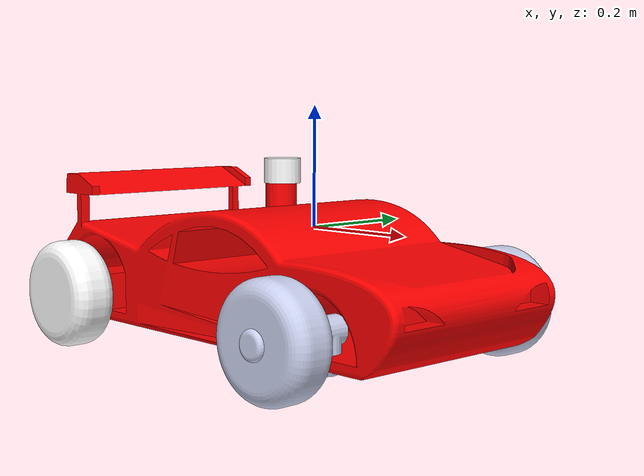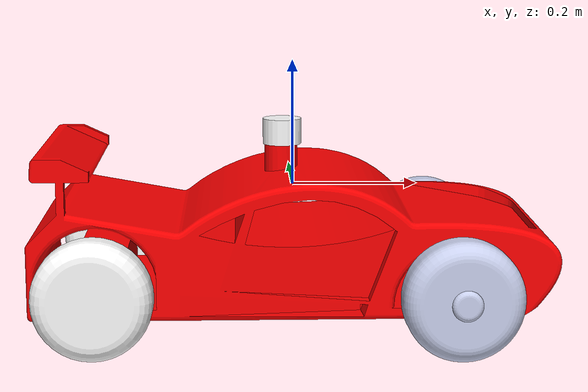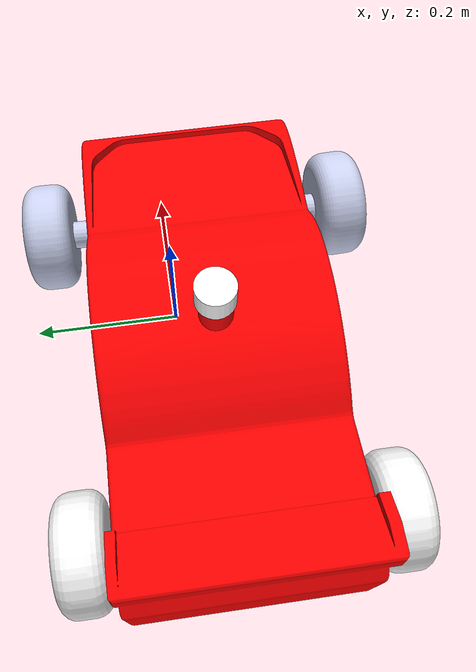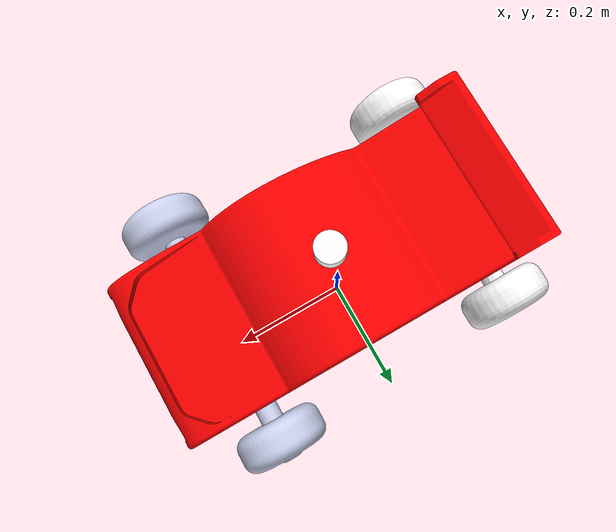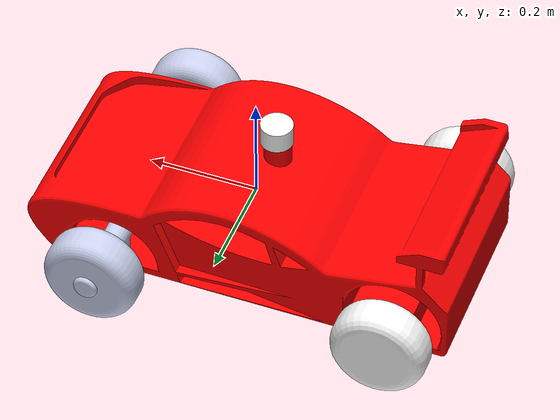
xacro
<?xml version="1.0"?>
<robot
  name="racecar_1" xmlns:xacro="http://ros.org/wiki/xacro">

  <xacro:macro name="body_color">
      <visual>
      <material>
          <ambient>1 0 0 1</ambient>
          <diffuse>1 0 0 1</diffuse>
          <specular>0.1 0.1 0.1 1</specular>
          <emissive>0 0 0 0</emissive>
      </material>
      </visual>
  </xacro:macro>

    <xacro:macro name="rear_tyre_color">
      <visual>
      <material>
          <ambient>1 1 1 1</ambient>
          <diffuse>1 1 1 1</diffuse>
          <specular>0.1 0.1 0.1 1</specular>
          <emissive>0 0 0 0</emissive>
      </material>
      </visual>
  </xacro:macro>

    <xacro:macro name="l_link_right_color">
      <visual>
      <material>
          <ambient>0.792156862745098 0.819607843137255 0.933333333333333 1</ambient>
          <diffuse>0.792156862745098 0.819607843137255 0.933333333333333 1</diffuse>
          <specular>0.1 0.1 0.1 1</specular>
          <emissive>0 0 0 0</emissive>
      </material>
      </visual>
  </xacro:macro>

    <xacro:macro name="l_link_left_color">
      <visual>
      <material>
          <ambient>0.792156862745098 0.819607843137255 0.933333333333333 1</ambient>
          <diffuse>0.792156862745098 0.819607843137255 0.933333333333333 1</diffuse>
          <specular>0.1 0.1 0.1 1</specular>
          <emissive>0 0 0 0</emissive>
      </material>
      </visual>
  </xacro:macro>

    <xacro:macro name="tyre_right_f_color">
      <visual>
      <material>
          <ambient>0.792156862745098 0.819607843137255 0.933333333333333 1</ambient>
          <diffuse>0.792156862745098 0.819607843137255 0.933333333333333 1</diffuse>
          <specular>0.1 0.1 0.1 1</specular>
          <emissive>0 0 0 0</emissive>
      </material>
      </visual>
  </xacro:macro>

    <xacro:macro name="tyre_left_f_color">
      <visual>
      <material>
          <ambient>0.792156862745098 0.819607843137255 0.933333333333333 1</ambient>
          <diffuse>0.792156862745098 0.819607843137255 0.933333333333333 1</diffuse>
          <specular>0.1 0.1 0.1 1</specular>
          <emissive>0 0 0 0</emissive>
      </material>
      </visual>
  </xacro:macro>

    # before base link
  <link name="dummy_link"></link>

  <link
    name="base_link">
    <inertial>
      <origin
        xyz="-0.0109928146425733 -0.0533021658276837 -0.0718641926502767"
        rpy="0 0 0" />
      <mass
        value="20.6916512486912" />
      <inertia
        ixx="0.321750706503774"
        ixy="0.00106012553052971"
        ixz="0.0300017756684681"
        iyy="1.2584962847604"
        iyz="0.00193875141931229"
        izz="1.42862347215519" />
    </inertial>
    <visual>
      <origin
        xyz="0 0 0"
        rpy="0 0 0" />
      <geometry>
        <mesh
          filename="package://racecar_1/meshes/base_link.STL" />
      </geometry>
      <material
        name="">
        <color
          rgba="1 0 0 1" />
      </material>
    </visual>
    <collision>
      <origin
        xyz="0 0 0"
        rpy="0 0 0" />
      <geometry>
        <mesh
          filename="package://racecar_1/meshes/base_link.STL" />
      </geometry>
    </collision>
  </link>

   # after base link
  <joint name="dummy_joint" type="fixed">
      <origin rpy="0 0 0" xyz="0 0 0" />
      <parent link="dummy_link"/>
      <child link="base_link"/>
  </joint>

  <link name="laser_frame">
    <visual>
      <geometry>
          <cylinder radius="0.03" length="0.04"/>
      </geometry>
      <material name="white">
        <color rgba="1 1 1 1"/>
      </material>
    </visual>
    <collision>
      <geometry>
        <cylinder radius="0.03" length="0.04"/>
      </geometry>
    </collision>
  </link>

  <joint name="laser_joint" type="fixed">
        <parent link="base_link"/>
        <child link="laser_frame"/>
        <origin xyz= "-0.018 -0.055 0.095" rpy="0 0 0"/>
  </joint>

  <gazebo reference="laser_frame">
  <gravity>true</gravity>
  <sensor name="imu_sensor" type="imu">
    <always_on>true</always_on>
    <update_rate>100</update_rate>
    <visualize>true</visualize>
    <topic>__default_topic__</topic>
    <plugin filename="libgazebo_ros_imu_sensor.so" name="imu_plugin">
      <topicName>imu</topicName>
      <bodyName>base_link</bodyName>
      <updateRateHZ>10.0</updateRateHZ>
      <gaussianNoise>0.0</gaussianNoise>
      <xyzOffset>0 0 0</xyzOffset>
      <rpyOffset>0 0 0</rpyOffset>
      <frameName>base_link</frameName>
      <initialOrientationAsReference>false</initialOrientationAsReference>
    </plugin>
    <pose>0 0 0 0 0 0</pose>
  </sensor>
  </gazebo>

  <gazebo reference="laser_frame">
  <sensor name="lidar" type="ray">
    <pose>0.0 0.0 0.0 0 0 0</pose>
    <always_on>true</always_on>
    <visualize>true</visualize>
    <update_rate>5</update_rate>
    <ray>
      <scan>
        <horizontal>
          <samples>360</samples>
          <resolution>1.00000</resolution>
          <min_angle>0.000000</min_angle>
          <max_angle>6.280000</max_angle>
        </horizontal>
      </scan>
      <range>
        <min>0.120000</min>
        <max>4</max>
        <resolution>0.015000</resolution>
      </range>
      <noise>
        <type>gaussian</type>
        <mean>0.0</mean>
        <stddev>0.01</stddev>
      </noise>
    </ray>
    <plugin name="scan" filename="libgazebo_ros_ray_sensor.so">
      <ros>
        <remapping>~/out:=scan</remapping>
      </ros>
      <output_type>sensor_msgs/LaserScan</output_type>
      <frame_name>laser_frame</frame_name>
    </plugin>
  </sensor>
  </gazebo>

  <link
    name="back_wheel_link">
    <inertial>
      <origin
        xyz="0 0 0.2667"
        rpy="0 0 0" />
      <mass
        value="3.96932815202646" />
      <inertia
        ixx="0.19975718936313"
        ixy="4.21553625732351E-22"
        ixz="3.14070001763781E-18"
        iyy="0.19975718936313"
        iyz="-8.27251196498385E-22"
        izz="0.0132550193787797" />
    </inertial>
    <visual>
      <origin
        xyz="0 0 0"
        rpy="0 0 0" />
      <geometry>
        <mesh
          filename="package://racecar_1/meshes/back_wheel_link.STL" />
      </geometry>
      <material
        name="">
        <color
          rgba="1 1 1 1" />
      </material>
    </visual>
    <collision>
      <origin
        xyz="0 0 0"
        rpy="0 0 0" />
      <geometry>
        <mesh
          filename="package://racecar_1/meshes/back_wheel_link.STL" />
      </geometry>
    </collision>
  </link>
  <joint
    name="back_wheel_joint"
    type="continuous">
    <origin
      xyz="-0.298429345837053 0.210979890534715 -0.115299876982604"
      rpy="1.5707963267949 0 0" />
    <parent
      link="base_link" />
    <child
      link="back_wheel_link" />
    <axis
      xyz="0 0 -1" />
  </joint>
  <link
    name="right_steering_link">
    <inertial>
      <origin
        xyz="0.000690836569863296 0.0427070668978653 0.0131737283632447"
        rpy="0 0 0" />
      <mass
        value="0.283850895821169" />
      <inertia
        ixx="0.000781265856276585"
        ixy="-1.03877435530983E-05"
        ixz="-1.52732848818862E-06"
        iyy="0.000139257541666712"
        iyz="-9.44190538544127E-05"
        izz="0.000707853269137981" />
    </inertial>
    <visual>
      <origin
        xyz="0 0 0"
        rpy="0 0 0" />
      <geometry>
        <mesh
          filename="package://racecar_1/meshes/right_steering_link.STL" />
      </geometry>
      <material
        name="">
        <color
          rgba="0.792156862745098 0.819607843137255 0.933333333333333 1" />
      </material>
    </visual>
    <collision>
      <origin
        xyz="0 0 0"
        rpy="0 0 0" />
      <geometry>
        <mesh
          filename="package://racecar_1/meshes/right_steering_link.STL" />
      </geometry>
    </collision>
  </link>
  <joint
    name="right_steering_joint"
    type="revolute">
    <origin
      xyz="0.233219014618529 0.0889076771147307 -0.136262415827957"
      rpy="0 0 0" />
    <parent
      link="base_link" />
    <child
      link="right_steering_link" />
    <axis
      xyz="0 0 1" />
    <limit
      lower="-0.24"
      upper="0.24"
      effort="100"
      velocity="100" />
  </joint>
  <link
    name="rightfront_wheel_link">
    <inertial>
      <origin
        xyz="-0.000616208304562216 -4.16333634234434E-17 0.0380950165681207"
        rpy="0 0 0" />
      <mass
        value="1.67146542212714" />
      <inertia
        ixx="0.00395119315654341"
        ixy="3.62530640146086E-20"
        ixz="-4.04455905049505E-05"
        iyy="0.00395053892638426"
        iyz="-1.65517409058071E-18"
        izz="0.00645095222653964" />
    </inertial>
    <visual>
      <origin
        xyz="0 0 0"
        rpy="0 0 0" />
      <geometry>
        <mesh
          filename="package://racecar_1/meshes/rightfront_wheel_link.STL" />
      </geometry>
      <material
        name="">
        <color
          rgba="0.792156862745098 0.819607843137255 0.933333333333333 1" />
      </material>
    </visual>
    <collision>
      <origin
        xyz="0 0 0"
        rpy="0 0 0" />
      <geometry>
        <mesh
          filename="package://racecar_1/meshes/rightfront_wheel_link.STL" />
      </geometry>
    </collision>
  </link>
  <joint
    name="rightfront_wheel_joint"
    type="continuous">
    <origin
      xyz="0.00225946585726597 0.139681622359658 0.020962538845353"
      rpy="1.5707963267949 0 0" />
    <parent
      link="right_steering_link" />
    <child
      link="rightfront_wheel_link" />
    <axis
      xyz="0.0161734463139682 0 -0.99986920126301" />
    <limit
      effort="100"
      velocity="1000" />
  </joint>
  <link
    name="left_steering_link">
    <inertial>
      <origin
        xyz="0.00151984293570018 -0.042685605044254 0.0131737283532376"
        rpy="0 0 0" />
      <mass
        value="0.283850896147853" />
      <inertia
        ixx="0.000780620573162083"
        ixy="2.28422322536719E-05"
        ixz="-3.36015646299281E-06"
        iyy="0.000139902826898753"
        iyz="9.43716052922465E-05"
        izz="0.000707853271101086" />
    </inertial>
    <visual>
      <origin
        xyz="0 0 0"
        rpy="0 0 0" />
      <geometry>
        <mesh
          filename="package://racecar_1/meshes/left_steering_link.STL" />
      </geometry>
      <material
        name="">
        <color
          rgba="0.792156862745098 0.819607843137255 0.933333333333333 1" />
      </material>
    </visual>
    <collision>
      <origin
        xyz="0 0 0"
        rpy="0 0 0" />
      <geometry>
        <mesh
          filename="package://racecar_1/meshes/left_steering_link.STL" />
      </geometry>
    </collision>
  </link>
  <joint
    name="left_steering_joint"
    type="revolute">
    <origin
      xyz="0.233219090821369 -0.200347894072532 -0.136262415827957"
      rpy="0 0 0" />
    <parent
      link="base_link" />
    <child
      link="left_steering_link" />
    <axis
      xyz="0 0 1" />
    <limit
      lower="-0.24"
      upper="0.24"
      effort="100"
      velocity="10" />
  </joint>
  <link
    name="leftfront_wheel_link">
    <inertial>
      <origin
        xyz="-0.0013557333541791 0 -0.0380758714551928"
        rpy="0 0 0" />
      <mass
        value="1.67146542212714" />
      <inertia
        ixx="0.00395370575111928"
        ixy="1.22786246949949E-19"
        ixz="8.89405067449828E-05"
        iyy="0.00395053892638426"
        iyz="-2.07986499324679E-20"
        izz="0.00644843963196377" />
    </inertial>
    <visual>
      <origin
        xyz="0 0 0"
        rpy="0 0 0" />
      <geometry>
        <mesh
          filename="package://racecar_1/meshes/leftfront_wheel_link.STL" />
      </geometry>
      <material
        name="">
        <color
          rgba="0.792156862745098 0.819607843137255 0.933333333333333 1" />
      </material>
    </visual>
    <collision>
      <origin
        xyz="0 0 0"
        rpy="0 0 0" />
      <geometry>
        <mesh
          filename="package://racecar_1/meshes/leftfront_wheel_link.STL" />
      </geometry>
    </collision>
  </link>
  <joint
    name="leftfront_wheel_joint"
    type="continuous">
    <origin
      xyz="0.0049709815030218 -0.139611425585025 0.020962538845353"
      rpy="1.5707963267949 0 0" />
    <parent
      link="left_steering_link" />
    <child
      link="leftfront_wheel_link" />
    <axis
      xyz="-0.0355835526031261 0 -0.999366704860703" />
    <limit
      effort="100"
      velocity="1000" />
  </joint>

  <ros2_control name="GazeboSystem" type="system">
  <hardware>
      <plugin>gazebo_ros2_control/GazeboSystem</plugin>
  </hardware>
  # Velocity Controllers

  <joint name="back_wheel_joint">
      <command_interface name="velocity">
          <param name="min">-1000.0</param>
          <param name="max">1000.0</param>
      </command_interface>
      <state_interface name="position"/>
      <state_interface name="velocity"/>
  </joint>

  <joint name="rightfront_wheel_joint">
      <command_interface name="velocity">
          <param name="min">-1000.0</param>
          <param name="max">1000.0</param>
      </command_interface>
      <state_interface name="position"/>
      <state_interface name="velocity"/>
  </joint>

  <joint name="leftfront_wheel_joint">
      <command_interface name="velocity">
          <param name="min">-1000.0</param>
          <param name="max">1000.0</param>
      </command_interface>
      <state_interface name="position"/>
      <state_interface name="velocity"/>
  </joint>

  # Position Controller
  <joint name="right_steering_joint">
      <command_interface name="position">
          <param name="min">-0.34</param>
          <param name="max">0.34</param>
      </command_interface>
      <state_interface name="position"/>
      <state_interface name="velocity"/>
  </joint>

  <joint name="left_steering_joint">
      <command_interface name="position">
          <param name="min">-0.34</param>
          <param name="max">0.34</param>
      </command_interface>
      <state_interface name="position"/>
      <state_interface name="velocity"/>
  </joint>

  </ros2_control>

  <gazebo>
      <plugin filename="libgazebo_ros2_control.so" name="gazebo_ros2_control">
          <parameters>$(find racecar_1)/config/control.yaml</parameters>
      </plugin>
  </gazebo>

  <gazebo reference="base_link">
    <xacro:body_color />
  </gazebo>
  <gazebo reference="back_wheel_link">
    <xacro:rear_tyre_color />
  </gazebo>
  <gazebo reference="right_steering_link">
    <xacro:l_link_right_color />
  </gazebo>
  <gazebo reference="left_steering_link">
    <xacro:l_link_left_color />
  </gazebo>
  <gazebo reference="rightfront_wheel_link">
    <xacro:tyre_right_f_color />
  </gazebo>
  <gazebo reference="leftfront_wheel_link">
    <xacro:tyre_left_f_color />
  </gazebo>

</robot>
